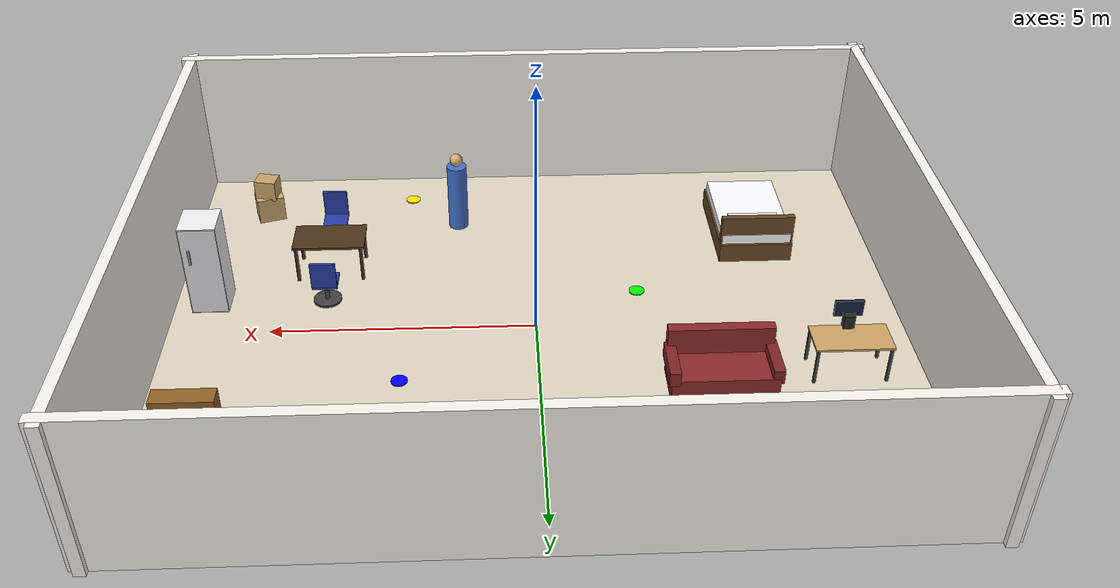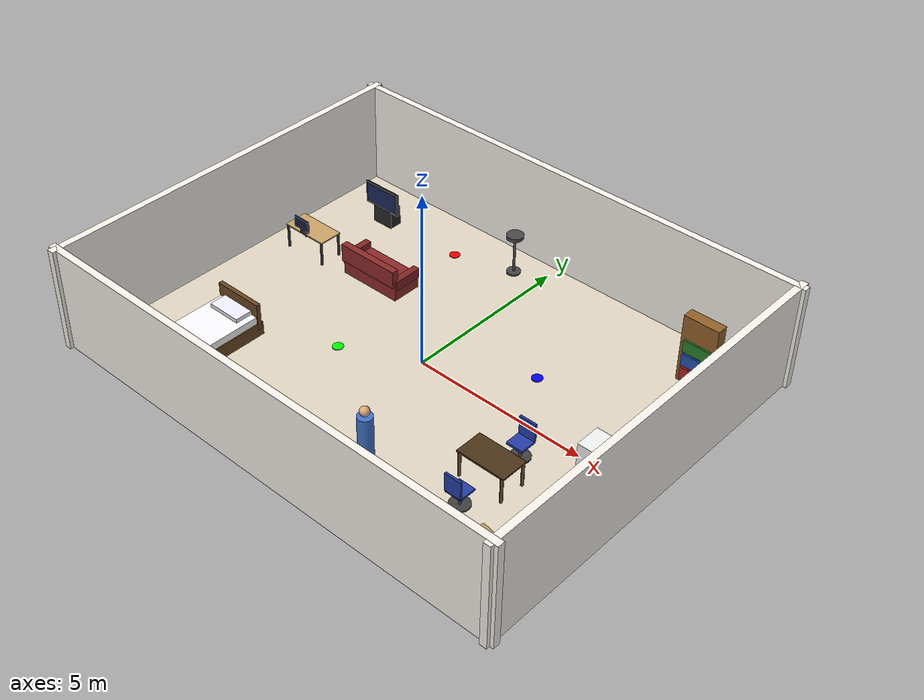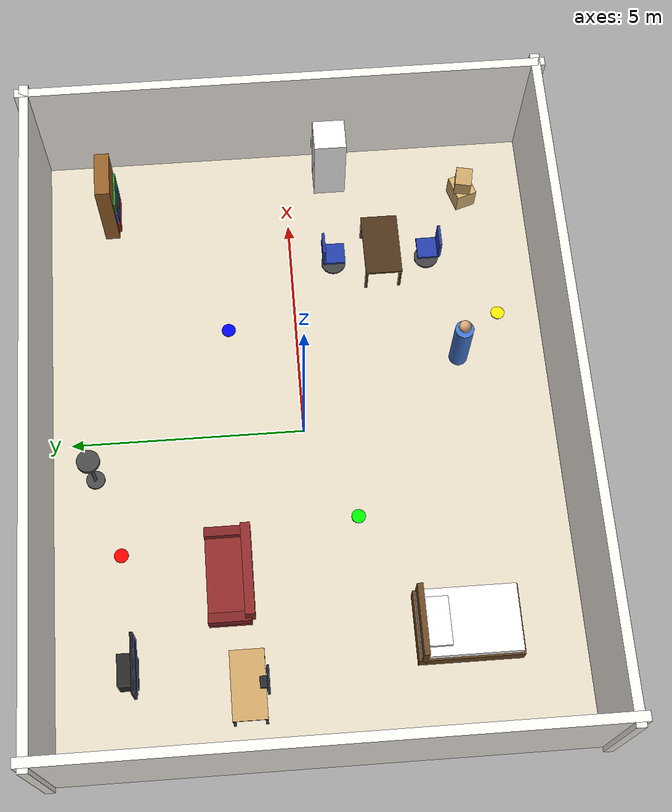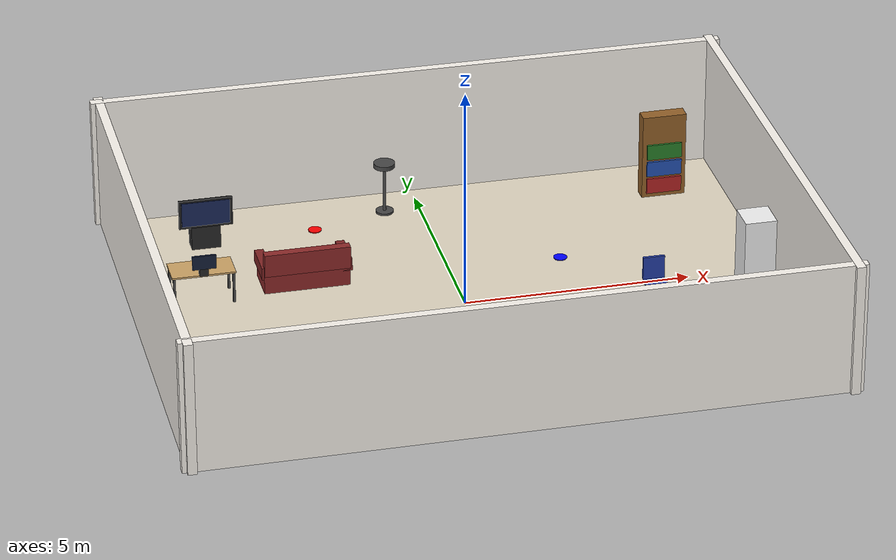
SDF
<?xml version="1.0" ?>
<sdf version="1.6">
  <world name="default">

    <plugin filename="libignition-gazebo-physics-system.so"
            name="ignition::gazebo::systems::Physics"/>
    <plugin filename="libignition-gazebo-user-commands-system.so"
            name="ignition::gazebo::systems::UserCommands"/>
    <plugin filename="libignition-gazebo-scene-broadcaster-system.so"
            name="ignition::gazebo::systems::SceneBroadcaster"/>
    <plugin filename="libignition-gazebo-imu-system.so"
            name="ignition::gazebo::systems::Imu"/>
    <plugin filename="libignition-gazebo-sensors-system.so"
            name="ignition::gazebo::systems::Sensors">
      <render_engine>ogre2</render_engine>
    </plugin>

    <physics name="default_physics" default="true" type="ode">
      <max_step_size>0.001</max_step_size>
      <real_time_factor>1</real_time_factor>
      <real_time_update_rate>500</real_time_update_rate>
      <gravity>0 0 -9.81</gravity>
    </physics>

    <light name="sun" type="directional">
      <cast_shadows>false</cast_shadows>
      <pose>0 0 12 0 -0.4 0.6</pose>
      <diffuse>1.0 0.98 0.94 1</diffuse>
      <specular>0.4 0.4 0.4 1</specular>
      <direction>-0.4 0.2 -0.9</direction>
    </light>
    <light name="fill" type="directional">
      <cast_shadows>false</cast_shadows>
      <pose>0 0 8 0 0 0</pose>
      <diffuse>0.50 0.52 0.58 1</diffuse>
      <specular>0.02 0.02 0.02 1</specular>
      <direction>0 0 -1</direction>
    </light>

    <!-- ══ FLOOR ════════════════════════════════════════════════════════════ -->
    <model name="floor"><static>true</static><pose>0 0 0 0 0 0</pose>
      <link name="link">
        <collision name="col"><geometry><box><size>14 11 0.02</size></box></geometry></collision>
        <visual name="vis"><geometry><box><size>14 11 0.02</size></box></geometry>
          <material><ambient>0.82 0.78 0.70 1</ambient><diffuse>0.88 0.84 0.76 1</diffuse></material></visual>
      </link>
    </model>

    <!-- ══ WALLS ════════════════════════════════════════════════════════════ -->
    <model name="wall_north"><static>true</static><pose>0 5.5 1.5 0 0 0</pose>
      <link name="link">
        <collision name="col"><geometry><box><size>14.4 0.2 3.0</size></box></geometry></collision>
        <visual name="vis"><geometry><box><size>14.4 0.2 3.0</size></box></geometry>
          <material><ambient>0.95 0.93 0.90 1</ambient><diffuse>0.98 0.96 0.93 1</diffuse></material></visual>
      </link>
    </model>
    <model name="wall_south"><static>true</static><pose>0 -5.5 1.5 0 0 0</pose>
      <link name="link">
        <collision name="col"><geometry><box><size>14.4 0.2 3.0</size></box></geometry></collision>
        <visual name="vis"><geometry><box><size>14.4 0.2 3.0</size></box></geometry>
          <material><ambient>0.95 0.93 0.90 1</ambient><diffuse>0.98 0.96 0.93 1</diffuse></material></visual>
      </link>
    </model>
    <model name="wall_east"><static>true</static><pose>7.0 0 1.5 0 0 0</pose>
      <link name="link">
        <collision name="col"><geometry><box><size>0.2 11.4 3.0</size></box></geometry></collision>
        <visual name="vis"><geometry><box><size>0.2 11.4 3.0</size></box></geometry>
          <material><ambient>0.95 0.93 0.90 1</ambient><diffuse>0.98 0.96 0.93 1</diffuse></material></visual>
      </link>
    </model>
    <model name="wall_west"><static>true</static><pose>-7.0 0 1.5 0 0 0</pose>
      <link name="link">
        <collision name="col"><geometry><box><size>0.2 11.4 3.0</size></box></geometry></collision>
        <visual name="vis"><geometry><box><size>0.2 11.4 3.0</size></box></geometry>
          <material><ambient>0.95 0.93 0.90 1</ambient><diffuse>0.98 0.96 0.93 1</diffuse></material></visual>
      </link>
    </model>

    <model name="sofa_seat"><static>true</static><pose>-3.2 1.8 0.23 0 0 0</pose>
      <link name="l"><collision name="c"><geometry><box><size>1.90 0.88 0.46</size></box></geometry></collision>
        <visual name="v"><geometry><box><size>1.90 0.88 0.46</size></box></geometry>
          <material><ambient>0.42 0.12 0.12 1</ambient><diffuse>0.55 0.16 0.16 1</diffuse></material></visual></link></model>
    <model name="sofa_back"><static>true</static><pose>-3.2 1.38 0.72 0 0 0</pose>
      <link name="l"><collision name="c"><geometry><box><size>1.90 0.20 0.52</size></box></geometry></collision>
        <visual name="v"><geometry><box><size>1.90 0.20 0.52</size></box></geometry>
          <material><ambient>0.42 0.12 0.12 1</ambient><diffuse>0.55 0.16 0.16 1</diffuse></material></visual></link></model>
    <model name="sofa_arm_l"><static>true</static><pose>-4.10 1.8 0.50 0 0 0</pose>
      <link name="l"><collision name="c"><geometry><box><size>0.20 0.88 0.28</size></box></geometry></collision>
        <visual name="v"><geometry><box><size>0.20 0.88 0.28</size></box></geometry>
          <material><ambient>0.38 0.10 0.10 1</ambient><diffuse>0.50 0.14 0.14 1</diffuse></material></visual></link></model>
    <model name="sofa_arm_r"><static>true</static><pose>-2.30 1.8 0.50 0 0 0</pose>
      <link name="l"><collision name="c"><geometry><box><size>0.20 0.88 0.28</size></box></geometry></collision>
        <visual name="v"><geometry><box><size>0.20 0.88 0.28</size></box></geometry>
          <material><ambient>0.38 0.10 0.10 1</ambient><diffuse>0.50 0.14 0.14 1</diffuse></material></visual></link></model>

    <!-- ══ DESK — class: desk ════════════════════════════════════════════════
         Light wood top + 4 dark metal legs ══════════════════════════════ -->
    <model name="desk_top"><static>true</static><pose>-5.5 1.5 0.74 0 0 0</pose>
      <link name="l"><collision name="c"><geometry><box><size>1.40 0.70 0.04</size></box></geometry></collision>
        <visual name="v"><geometry><box><size>1.40 0.70 0.04</size></box></geometry>
          <material><ambient>0.70 0.55 0.32 1</ambient><diffuse>0.80 0.64 0.40 1</diffuse></material></visual></link></model>
    <model name="desk_legFL"><static>true</static><pose>-4.85 1.82 0.37 0 0 0</pose>
      <link name="l"><collision name="c"><geometry><box><size>0.05 0.05 0.74</size></box></geometry></collision>
        <visual name="v"><geometry><box><size>0.05 0.05 0.74</size></box></geometry>
          <material><ambient>0.20 0.20 0.20 1</ambient><diffuse>0.28 0.28 0.28 1</diffuse></material></visual></link></model>
    <model name="desk_legFR"><static>true</static><pose>-6.15 1.82 0.37 0 0 0</pose>
      <link name="l"><collision name="c"><geometry><box><size>0.05 0.05 0.74</size></box></geometry></collision>
        <visual name="v"><geometry><box><size>0.05 0.05 0.74</size></box></geometry>
          <material><ambient>0.20 0.20 0.20 1</ambient><diffuse>0.28 0.28 0.28 1</diffuse></material></visual></link></model>
    <model name="desk_legBL"><static>true</static><pose>-4.85 1.18 0.37 0 0 0</pose>
      <link name="l"><collision name="c"><geometry><box><size>0.05 0.05 0.74</size></box></geometry></collision>
        <visual name="v"><geometry><box><size>0.05 0.05 0.74</size></box></geometry>
          <material><ambient>0.20 0.20 0.20 1</ambient><diffuse>0.28 0.28 0.28 1</diffuse></material></visual></link></model>
    <model name="desk_legBR"><static>true</static><pose>-6.15 1.18 0.37 0 0 0</pose>
      <link name="l"><collision name="c"><geometry><box><size>0.05 0.05 0.74</size></box></geometry></collision>
        <visual name="v"><geometry><box><size>0.05 0.05 0.74</size></box></geometry>
          <material><ambient>0.20 0.20 0.20 1</ambient><diffuse>0.28 0.28 0.28 1</diffuse></material></visual></link></model>
    <!-- Monitor on desk — class: monitor -->
    <model name="monitor_stand"><static>true</static><pose>-5.5 1.20 0.88 0 0 0</pose>
      <link name="l"><collision name="c"><geometry><box><size>0.20 0.14 0.28</size></box></geometry></collision>
        <visual name="v"><geometry><box><size>0.20 0.14 0.28</size></box></geometry>
          <material><ambient>0.10 0.10 0.10 1</ambient><diffuse>0.15 0.15 0.15 1</diffuse></material></visual></link></model>
    <model name="monitor_screen"><static>true</static><pose>-5.5 1.10 1.10 0 0 0</pose>
      <link name="l"><collision name="c"><geometry><box><size>0.52 0.05 0.32</size></box></geometry></collision>
        <visual name="v"><geometry><box><size>0.52 0.05 0.32</size></box></geometry>
          <material><ambient>0.05 0.08 0.15 1</ambient><diffuse>0.08 0.12 0.22 1</diffuse></material></visual></link></model>

    <!-- ══ TV + STAND — class: tv ════════════════════════════════════════════
         Black flat-panel + dark stand — very recognisable silhouette ══════ -->
    <model name="tv_stand"><static>true</static><pose>-5.0 3.90 0.30 0 0 0</pose>
      <link name="l"><collision name="c"><geometry><box><size>0.65 0.38 0.60</size></box></geometry></collision>
        <visual name="v"><geometry><box><size>0.65 0.38 0.60</size></box></geometry>
          <material><ambient>0.10 0.10 0.10 1</ambient><diffuse>0.15 0.15 0.15 1</diffuse></material></visual></link></model>
    <model name="tv_panel"><static>true</static><pose>-5.0 3.72 0.90 0 0 0</pose>
      <link name="l"><collision name="c"><geometry><box><size>1.20 0.06 0.68</size></box></geometry></collision>
        <visual name="v"><geometry><box><size>1.20 0.06 0.68</size></box></geometry>
          <material><ambient>0.06 0.06 0.06 1</ambient><diffuse>0.10 0.10 0.10 1</diffuse></material></visual></link></model>
    <model name="tv_screen"><static>true</static><pose>-5.0 3.69 0.90 0 0 0</pose>
      <link name="l"><collision name="c"><geometry><box><size>1.08 0.02 0.58</size></box></geometry></collision>
        <visual name="v"><geometry><box><size>1.08 0.02 0.58</size></box></geometry>
          <material><ambient>0.08 0.12 0.28 1</ambient><diffuse>0.10 0.16 0.35 1</diffuse></material></visual></link></model>

    <!-- ══ BOOKSHELF — class: bookshelf ══════════════════════════════════════
         5-shelf unit with visible shelves and coloured books ════════════ -->
    <model name="bs_frame"><static>true</static><pose>5.5 4.0 1.0 0 0 0</pose>
      <link name="l"><collision name="c"><geometry><box><size>1.00 0.32 2.00</size></box></geometry></collision>
        <visual name="v"><geometry><box><size>1.00 0.32 2.00</size></box></geometry>
          <material><ambient>0.48 0.30 0.12 1</ambient><diffuse>0.58 0.38 0.16 1</diffuse></material></visual></link></model>
    <!-- shelves (lighter wood) -->
    <model name="bs_s1"><static>true</static><pose>5.5 4.0 0.10 0 0 0</pose>
      <link name="l"><collision name="c"><geometry><box><size>0.94 0.30 0.04</size></box></geometry></collision>
        <visual name="v"><geometry><box><size>0.94 0.30 0.04</size></box></geometry>
          <material><ambient>0.60 0.40 0.20 1</ambient><diffuse>0.70 0.50 0.26 1</diffuse></material></visual></link></model>
    <model name="bs_s2"><static>true</static><pose>5.5 4.0 0.52 0 0 0</pose>
      <link name="l"><collision name="c"><geometry><box><size>0.94 0.30 0.04</size></box></geometry></collision>
        <visual name="v"><geometry><box><size>0.94 0.30 0.04</size></box></geometry>
          <material><ambient>0.60 0.40 0.20 1</ambient><diffuse>0.70 0.50 0.26 1</diffuse></material></visual></link></model>
    <model name="bs_s3"><static>true</static><pose>5.5 4.0 0.94 0 0 0</pose>
      <link name="l"><collision name="c"><geometry><box><size>0.94 0.30 0.04</size></box></geometry></collision>
        <visual name="v"><geometry><box><size>0.94 0.30 0.04</size></box></geometry>
          <material><ambient>0.60 0.40 0.20 1</ambient><diffuse>0.70 0.50 0.26 1</diffuse></material></visual></link></model>
    <model name="bs_s4"><static>true</static><pose>5.5 4.0 1.36 0 0 0</pose>
      <link name="l"><collision name="c"><geometry><box><size>0.94 0.30 0.04</size></box></geometry></collision>
        <visual name="v"><geometry><box><size>0.94 0.30 0.04</size></box></geometry>
          <material><ambient>0.60 0.40 0.20 1</ambient><diffuse>0.70 0.50 0.26 1</diffuse></material></visual></link></model>
    <!-- books (red/blue blocks on shelves) -->
    <model name="books_r1"><static>true</static><pose>5.5 3.88 0.30 0 0 0</pose>
      <link name="l"><collision name="c"><geometry><box><size>0.80 0.18 0.36</size></box></geometry></collision>
        <visual name="v"><geometry><box><size>0.80 0.18 0.36</size></box></geometry>
          <material><ambient>0.55 0.10 0.10 1</ambient><diffuse>0.70 0.14 0.14 1</diffuse></material></visual></link></model>
    <model name="books_r2"><static>true</static><pose>5.5 3.88 0.72 0 0 0</pose>
      <link name="l"><collision name="c"><geometry><box><size>0.80 0.18 0.36</size></box></geometry></collision>
        <visual name="v"><geometry><box><size>0.80 0.18 0.36</size></box></geometry>
          <material><ambient>0.10 0.25 0.55 1</ambient><diffuse>0.14 0.32 0.70 1</diffuse></material></visual></link></model>
    <model name="books_r3"><static>true</static><pose>5.5 3.88 1.14 0 0 0</pose>
      <link name="l"><collision name="c"><geometry><box><size>0.80 0.18 0.36</size></box></geometry></collision>
        <visual name="v"><geometry><box><size>0.80 0.18 0.36</size></box></geometry>
          <material><ambient>0.12 0.38 0.12 1</ambient><diffuse>0.16 0.50 0.16 1</diffuse></material></visual></link></model>

    <!-- ══ BED — class: bed ══════════════════════════════════════════════════
         White mattress, dark wood frame + headboard ════════════════════ -->
    <model name="bed_frame"><static>true</static><pose>-4.5 -3.0 0.20 0 0 0</pose>
      <link name="l"><collision name="c"><geometry><box><size>1.45 2.15 0.40</size></box></geometry></collision>
        <visual name="v"><geometry><box><size>1.45 2.15 0.40</size></box></geometry>
          <material><ambient>0.32 0.20 0.10 1</ambient><diffuse>0.42 0.28 0.14 1</diffuse></material></visual></link></model>
    <model name="bed_mattress"><static>true</static><pose>-4.5 -3.0 0.50 0 0 0</pose>
      <link name="l"><collision name="c"><geometry><box><size>1.38 2.05 0.22</size></box></geometry></collision>
        <visual name="v"><geometry><box><size>1.38 2.05 0.22</size></box></geometry>
          <material><ambient>0.96 0.96 0.98 1</ambient><diffuse>0.99 0.99 1.00 1</diffuse></material></visual></link></model>
    <model name="bed_headboard"><static>true</static><pose>-4.5 -2.04 0.60 0 0 0</pose>
      <link name="l"><collision name="c"><geometry><box><size>1.45 0.12 0.80</size></box></geometry></collision>
        <visual name="v"><geometry><box><size>1.45 0.12 0.80</size></box></geometry>
          <material><ambient>0.32 0.20 0.10 1</ambient><diffuse>0.42 0.28 0.14 1</diffuse></material></visual></link></model>
    <!-- pillow -->
    <model name="bed_pillow"><static>true</static><pose>-4.5 -2.30 0.65 0 0 0</pose>
      <link name="l"><collision name="c"><geometry><box><size>1.00 0.60 0.14</size></box></geometry></collision>
        <visual name="v"><geometry><box><size>1.00 0.60 0.14</size></box></geometry>
          <material><ambient>0.90 0.90 0.95 1</ambient><diffuse>0.95 0.95 1.00 1</diffuse></material></visual></link></model>

    <!-- ══ DINING TABLE + CHAIRS — class: meeting_table, dining_chair ════════
         Dark walnut table + 2 blue chairs ════════════════════════════════ -->
    <model name="dtable_top"><static>true</static><pose>4.0 -2.0 0.76 0 0 0</pose>
      <link name="l"><collision name="c"><geometry><box><size>1.40 0.80 0.05</size></box></geometry></collision>
        <visual name="v"><geometry><box><size>1.40 0.80 0.05</size></box></geometry>
          <material><ambient>0.22 0.14 0.07 1</ambient><diffuse>0.30 0.20 0.10 1</diffuse></material></visual></link></model>
    <model name="dtable_legFL"><static>true</static><pose>4.63 -1.63 0.38 0 0 0</pose>
      <link name="l"><collision name="c"><geometry><box><size>0.06 0.06 0.76</size></box></geometry></collision>
        <visual name="v"><geometry><box><size>0.06 0.06 0.76</size></box></geometry>
          <material><ambient>0.18 0.12 0.06 1</ambient><diffuse>0.25 0.16 0.08 1</diffuse></material></visual></link></model>
    <model name="dtable_legFR"><static>true</static><pose>3.37 -1.63 0.38 0 0 0</pose>
      <link name="l"><collision name="c"><geometry><box><size>0.06 0.06 0.76</size></box></geometry></collision>
        <visual name="v"><geometry><box><size>0.06 0.06 0.76</size></box></geometry>
          <material><ambient>0.18 0.12 0.06 1</ambient><diffuse>0.25 0.16 0.08 1</diffuse></material></visual></link></model>
    <model name="dtable_legBL"><static>true</static><pose>4.63 -2.37 0.38 0 0 0</pose>
      <link name="l"><collision name="c"><geometry><box><size>0.06 0.06 0.76</size></box></geometry></collision>
        <visual name="v"><geometry><box><size>0.06 0.06 0.76</size></box></geometry>
          <material><ambient>0.18 0.12 0.06 1</ambient><diffuse>0.25 0.16 0.08 1</diffuse></material></visual></link></model>
    <model name="dtable_legBR"><static>true</static><pose>3.37 -2.37 0.38 0 0 0</pose>
      <link name="l"><collision name="c"><geometry><box><size>0.06 0.06 0.76</size></box></geometry></collision>
        <visual name="v"><geometry><box><size>0.06 0.06 0.76</size></box></geometry>
          <material><ambient>0.18 0.12 0.06 1</ambient><diffuse>0.25 0.16 0.08 1</diffuse></material></visual></link></model>
    <!-- chair 1 (north of table) -->
    <model name="chair1_seat"><static>true</static><pose>4.0 -0.95 0.47 0 0 3.1416</pose>
      <link name="l"><collision name="c"><geometry><box><size>0.48 0.48 0.06</size></box></geometry></collision>
        <visual name="v"><geometry><box><size>0.48 0.48 0.06</size></box></geometry>
          <material><ambient>0.10 0.18 0.50 1</ambient><diffuse>0.14 0.24 0.65 1</diffuse></material></visual></link></model>
    <model name="chair1_back"><static>true</static><pose>4.0 -0.72 0.76 0 0 0</pose>
      <link name="l"><collision name="c"><geometry><box><size>0.48 0.06 0.52</size></box></geometry></collision>
        <visual name="v"><geometry><box><size>0.48 0.06 0.52</size></box></geometry>
          <material><ambient>0.10 0.18 0.50 1</ambient><diffuse>0.14 0.24 0.65 1</diffuse></material></visual></link></model>
    <model name="chair1_col"><static>true</static><pose>4.0 -0.95 0.22 0 0 0</pose>
      <link name="l"><collision name="c"><geometry><cylinder><radius>0.04</radius><length>0.44</length></cylinder></geometry></collision>
        <visual name="v"><geometry><cylinder><radius>0.04</radius><length>0.44</length></cylinder></geometry>
          <material><ambient>0.20 0.20 0.20 1</ambient><diffuse>0.28 0.28 0.28 1</diffuse></material></visual></link></model>
    <model name="chair1_base"><static>true</static><pose>4.0 -0.95 0.04 0 0 0</pose>
      <link name="l"><collision name="c"><geometry><cylinder><radius>0.27</radius><length>0.04</length></cylinder></geometry></collision>
        <visual name="v"><geometry><cylinder><radius>0.27</radius><length>0.04</length></cylinder></geometry>
          <material><ambient>0.18 0.18 0.18 1</ambient><diffuse>0.25 0.25 0.25 1</diffuse></material></visual></link></model>
    <!-- chair 2 (south of table) -->
    <model name="chair2_seat"><static>true</static><pose>4.0 -3.05 0.47 0 0 0</pose>
      <link name="l"><collision name="c"><geometry><box><size>0.48 0.48 0.06</size></box></geometry></collision>
        <visual name="v"><geometry><box><size>0.48 0.48 0.06</size></box></geometry>
          <material><ambient>0.10 0.18 0.50 1</ambient><diffuse>0.14 0.24 0.65 1</diffuse></material></visual></link></model>
    <model name="chair2_back"><static>true</static><pose>4.0 -3.28 0.76 0 0 0</pose>
      <link name="l"><collision name="c"><geometry><box><size>0.48 0.06 0.52</size></box></geometry></collision>
        <visual name="v"><geometry><box><size>0.48 0.06 0.52</size></box></geometry>
          <material><ambient>0.10 0.18 0.50 1</ambient><diffuse>0.14 0.24 0.65 1</diffuse></material></visual></link></model>
    <model name="chair2_col"><static>true</static><pose>4.0 -3.05 0.22 0 0 0</pose>
      <link name="l"><collision name="c"><geometry><cylinder><radius>0.04</radius><length>0.44</length></cylinder></geometry></collision>
        <visual name="v"><geometry><cylinder><radius>0.04</radius><length>0.44</length></cylinder></geometry>
          <material><ambient>0.20 0.20 0.20 1</ambient><diffuse>0.28 0.28 0.28 1</diffuse></material></visual></link></model>
    <model name="chair2_base"><static>true</static><pose>4.0 -3.05 0.04 0 0 0</pose>
      <link name="l"><collision name="c"><geometry><cylinder><radius>0.27</radius><length>0.04</length></cylinder></geometry></collision>
        <visual name="v"><geometry><cylinder><radius>0.27</radius><length>0.04</length></cylinder></geometry>
          <material><ambient>0.18 0.18 0.18 1</ambient><diffuse>0.25 0.25 0.25 1</diffuse></material></visual></link></model>

    <!-- ══ REFRIGERATOR — class: refrigerator ════════════════════════════════
         Tall white box with grey door panel + handle — unmistakable shape ═ -->
    <model name="fridge_body"><static>true</static><pose>6.2 -1.0 0.95 0 0 0</pose>
      <link name="l"><collision name="c"><geometry><box><size>0.70 0.70 1.90</size></box></geometry></collision>
        <visual name="v"><geometry><box><size>0.70 0.70 1.90</size></box></geometry>
          <material><ambient>0.90 0.90 0.90 1</ambient><diffuse>0.95 0.95 0.95 1</diffuse></material></visual></link></model>
    <model name="fridge_door"><static>true</static><pose>6.2 -0.66 0.95 0 0 0</pose>
      <link name="l"><collision name="c"><geometry><box><size>0.68 0.02 1.86</size></box></geometry></collision>
        <visual name="v"><geometry><box><size>0.68 0.02 1.86</size></box></geometry>
          <material><ambient>0.82 0.82 0.84 1</ambient><diffuse>0.88 0.88 0.90 1</diffuse></material></visual></link></model>
    <model name="fridge_handle"><static>true</static><pose>6.4 -0.63 1.30 0 0 0</pose>
      <link name="l"><collision name="c"><geometry><box><size>0.04 0.05 0.30</size></box></geometry></collision>
        <visual name="v"><geometry><box><size>0.04 0.05 0.30</size></box></geometry>
          <material><ambient>0.55 0.55 0.55 1</ambient><diffuse>0.65 0.65 0.65 1</diffuse></material></visual></link></model>

    <!-- ══ PERSON (static) — class: person ══════════════════════════════════
         Body + head + simple arms for better silhouette ═════════════════ -->
    <model name="person_body"><static>true</static><pose>1.5 -3.5 0.72 0 0 0</pose>
      <link name="l"><collision name="c"><geometry><cylinder><radius>0.20</radius><length>1.44</length></cylinder></geometry></collision>
        <visual name="v"><geometry><cylinder><radius>0.20</radius><length>1.44</length></cylinder></geometry>
          <material><ambient>0.20 0.35 0.65 1</ambient><diffuse>0.25 0.45 0.80 1</diffuse></material></visual></link></model>
    <model name="person_head"><static>true</static><pose>1.5 -3.5 1.58 0 0 0</pose>
      <link name="l"><collision name="c"><geometry><sphere><radius>0.13</radius></sphere></geometry></collision>
        <visual name="v"><geometry><sphere><radius>0.13</radius></sphere></geometry>
          <material><ambient>0.75 0.55 0.38 1</ambient><diffuse>0.85 0.65 0.46 1</diffuse></material></visual></link></model>

    <!-- ══ FAN — class: lamp (closest match in model) ════════════════════════
         Base + pole + head — tall narrow silhouette ═══════════════════════ -->
    <model name="fan_base"><static>true</static><pose>-0.8 4.5 0.03 0 0 0</pose>
      <link name="l"><collision name="c"><geometry><cylinder><radius>0.20</radius><length>0.06</length></cylinder></geometry></collision>
        <visual name="v"><geometry><cylinder><radius>0.20</radius><length>0.06</length></cylinder></geometry>
          <material><ambient>0.20 0.20 0.20 1</ambient><diffuse>0.28 0.28 0.28 1</diffuse></material></visual></link></model>
    <model name="fan_pole"><static>true</static><pose>-0.8 4.5 0.60 0 0 0</pose>
      <link name="l"><collision name="c"><geometry><cylinder><radius>0.035</radius><length>1.10</length></cylinder></geometry></collision>
        <visual name="v"><geometry><cylinder><radius>0.035</radius><length>1.10</length></cylinder></geometry>
          <material><ambient>0.22 0.22 0.22 1</ambient><diffuse>0.30 0.30 0.30 1</diffuse></material></visual></link></model>
    <model name="fan_head"><static>true</static><pose>-0.8 4.5 1.20 0 0 0</pose>
      <link name="l"><collision name="c"><geometry><cylinder><radius>0.24</radius><length>0.10</length></cylinder></geometry></collision>
        <visual name="v"><geometry><cylinder><radius>0.24</radius><length>0.10</length></cylinder></geometry>
          <material><ambient>0.20 0.20 0.20 1</ambient><diffuse>0.28 0.28 0.28 1</diffuse></material></visual></link></model>

    <!-- ══ CARDBOARD BOXES — class: cardboard_box ════════════════════════════
         Warm tan cardboard colour, 2 stacked ════════════════════════════ -->
    <model name="box_lower"><static>true</static><pose>5.5 -4.0 0.27 0 0 0.3</pose>
      <link name="l"><collision name="c"><geometry><box><size>0.55 0.45 0.54</size></box></geometry></collision>
        <visual name="v"><geometry><box><size>0.55 0.45 0.54</size></box></geometry>
          <material><ambient>0.74 0.60 0.36 1</ambient><diffuse>0.82 0.68 0.44 1</diffuse></material></visual></link></model>
    <model name="box_upper"><static>true</static><pose>5.5 -4.0 0.72 0 0 -0.2</pose>
      <link name="l"><collision name="c"><geometry><box><size>0.44 0.36 0.42</size></box></geometry></collision>
        <visual name="v"><geometry><box><size>0.44 0.36 0.42</size></box></geometry>
          <material><ambient>0.70 0.56 0.32 1</ambient><diffuse>0.78 0.64 0.40 1</diffuse></material></visual></link></model>

    <!-- ══ WAYPOINTS ════════════════════════════════════════════════════════ -->
    <model name="wp_A"><static>true</static><pose>-2.0 -1.0 0.015 0 0 0</pose>
      <link name="l"><collision name="c"><geometry><cylinder><radius>0.15</radius><length>0.03</length></cylinder></geometry></collision>
        <visual name="v"><geometry><cylinder><radius>0.15</radius><length>0.03</length></cylinder></geometry>
          <material><ambient>0 0.8 0 1</ambient><diffuse>0 1.0 0 1</diffuse></material></visual></link></model>
    <model name="wp_B"><static>true</static><pose>2.5 1.5 0.015 0 0 0</pose>
      <link name="l"><collision name="c"><geometry><cylinder><radius>0.15</radius><length>0.03</length></cylinder></geometry></collision>
        <visual name="v"><geometry><cylinder><radius>0.15</radius><length>0.03</length></cylinder></geometry>
          <material><ambient>0 0 0.9 1</ambient><diffuse>0 0 1.0 1</diffuse></material></visual></link></model>
    <model name="wp_C"><static>true</static><pose>2.5 -4.5 0.015 0 0 0</pose>
      <link name="l"><collision name="c"><geometry><cylinder><radius>0.15</radius><length>0.03</length></cylinder></geometry></collision>
        <visual name="v"><geometry><cylinder><radius>0.15</radius><length>0.03</length></cylinder></geometry>
          <material><ambient>0.9 0.8 0 1</ambient><diffuse>1.0 0.9 0 1</diffuse></material></visual></link></model>
    <model name="wp_D"><static>true</static><pose>-2.5 4.0 0.015 0 0 0</pose>
      <link name="l"><collision name="c"><geometry><cylinder><radius>0.15</radius><length>0.03</length></cylinder></geometry></collision>
        <visual name="v"><geometry><cylinder><radius>0.15</radius><length>0.03</length></cylinder></geometry>
          <material><ambient>0.85 0 0 1</ambient><diffuse>1.0 0 0 1</diffuse></material></visual></link></model>

  </world>
</sdf>
